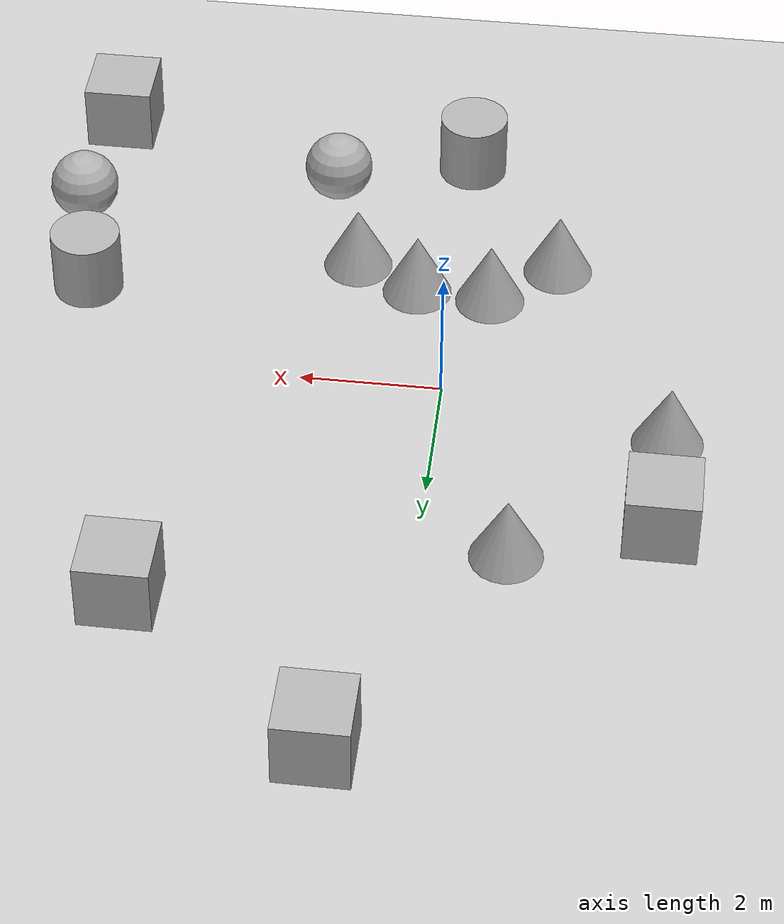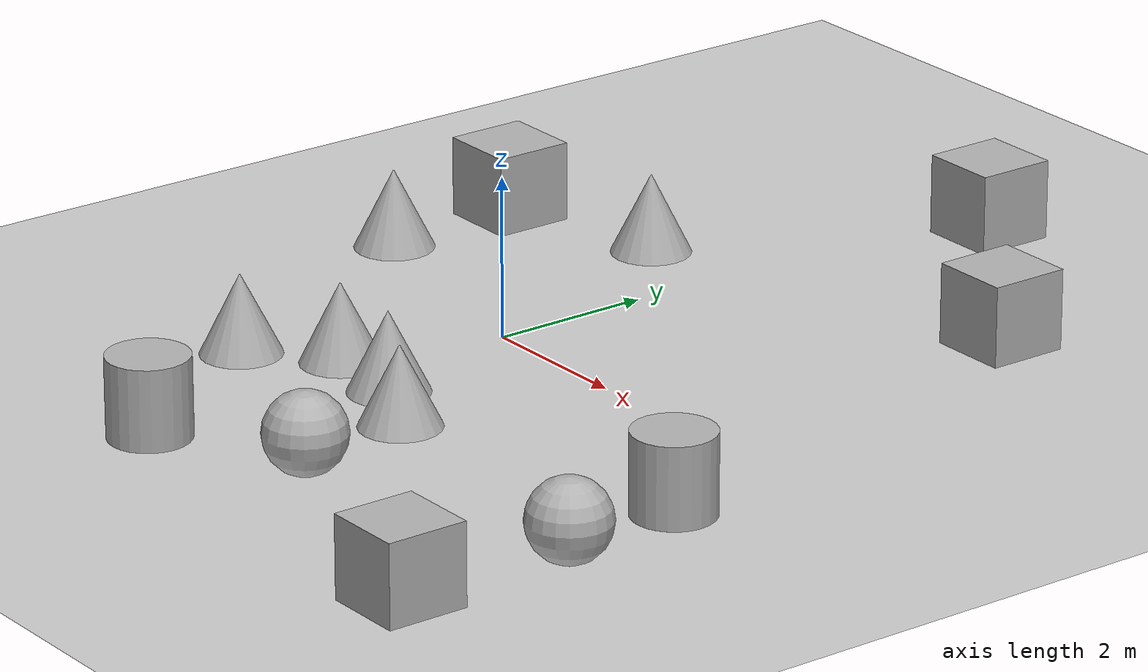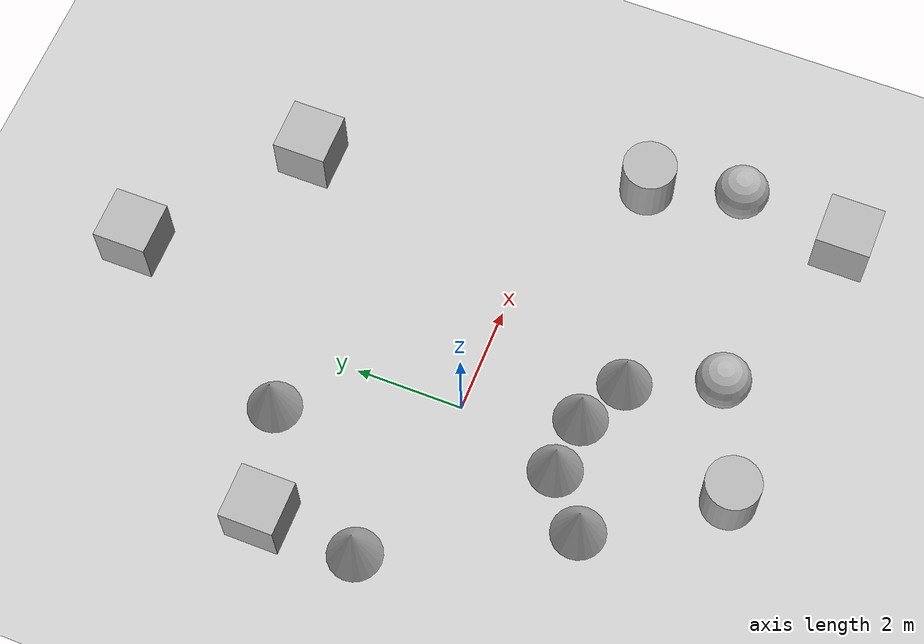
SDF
<sdf version='1.10'>
  <world name='default'>
    <physics name='physics' type='ode'>
      <max_step_size>0.001</max_step_size>
      <real_time_factor>1</real_time_factor>
      <real_time_update_rate>1000</real_time_update_rate>
    </physics>
    <plugin name='gz::sim::systems::Physics' filename='gz-sim-physics-system'/>
    <plugin name='gz::sim::systems::UserCommands' filename='gz-sim-user-commands-system'/>
    <plugin name='gz::sim::systems::SceneBroadcaster' filename='gz-sim-scene-broadcaster-system'/>
    <plugin name='gz::sim::systems::Sensors' filename='gz-sim-sensors-system'>
      <render_engine>ogre2</render_engine>
    </plugin>
    <plugin name='gz::sim::systems::Contact' filename='gz-sim-contact-system'/>
    <gravity>0 0 -9.8000000000000007</gravity>
    <magnetic_field>5.5644999999999998e-06 2.2875799999999999e-05 -4.2388400000000002e-05</magnetic_field>
    <atmosphere type='adiabatic'/>
    <scene>
      <ambient>0.400000006 0.400000006 0.400000006 1</ambient>
      <background>0.699999988 0.699999988 0.699999988 1</background>
      <shadows>true</shadows>
    </scene>
    <model name='ground_plane'>
      <static>true</static>
      <link name='link'>
        <collision name='collision'>
          <geometry>
            <plane>
              <normal>0 0 1</normal>
              <size>100 100</size>
            </plane>
          </geometry>
          <surface>
            <friction>
              <ode/>
            </friction>
            <bounce/>
            <contact/>
          </surface>
        </collision>
        <visual name='visual'>
          <geometry>
            <plane>
              <normal>0 0 1</normal>
              <size>100 100</size>
            </plane>
          </geometry>
          <material>
            <ambient>0.800000012 0.800000012 0.800000012 1</ambient>
            <diffuse>0.800000012 0.800000012 0.800000012 1</diffuse>
            <specular>0.800000012 0.800000012 0.800000012 1</specular>
          </material>
        </visual>
        <pose>0 0 0 0 0 0</pose>
        <inertial>
          <pose>0 0 0 0 0 0</pose>
          <mass>1</mass>
          <inertia>
            <ixx>1</ixx>
            <ixy>0</ixy>
            <ixz>0</ixz>
            <iyy>1</iyy>
            <iyz>0</iyz>
            <izz>1</izz>
          </inertia>
        </inertial>
        <enable_wind>false</enable_wind>
      </link>
      <pose>0 0 0 0 0 0</pose>
      <self_collide>false</self_collide>
    </model>
    <model name='box'>
      <pose>3.7128400802612305 4.4858298301696777 0.49813395644462022 2.6191741994421979e-18 -1.9292581018109869e-18 1.942576668301549e-19</pose>
      <link name='box_link'>
        <inertial>
          <inertia>
            <ixx>0.16666</ixx>
            <ixy>0</ixy>
            <ixz>0</ixz>
            <iyy>0.16666</iyy>
            <iyz>0</iyz>
            <izz>0.16666</izz>
          </inertia>
          <mass>1</mass>
          <pose>0 0 0 0 0 0</pose>
        </inertial>
        <collision name='box_collision'>
          <geometry>
            <box>
              <size>1 1 1</size>
            </box>
          </geometry>
          <surface>
            <friction>
              <ode/>
            </friction>
            <bounce/>
            <contact/>
          </surface>
        </collision>
        <visual name='box_visual'>
          <geometry>
            <box>
              <size>1 1 1</size>
            </box>
          </geometry>
          <material>
            <ambient>0.300000012 0.300000012 0.300000012 1</ambient>
            <diffuse>0.699999988 0.699999988 0.699999988 1</diffuse>
            <specular>1 1 1 1</specular>
          </material>
        </visual>
        <pose>0 0 0 0 0 0</pose>
        <enable_wind>false</enable_wind>
      </link>
      <static>false</static>
      <self_collide>false</self_collide>
    </model>
    <model name='sphere'>
      <pose>1.9833108214418864 -4.169061290152797 0.499999999902001 0 0 0</pose>
      <link name='sphere_link'>
        <inertial>
          <inertia>
            <ixx>0.10000000000000001</ixx>
            <ixy>0</ixy>
            <ixz>0</ixz>
            <iyy>0.10000000000000001</iyy>
            <iyz>0</iyz>
            <izz>0.10000000000000001</izz>
          </inertia>
          <mass>1</mass>
          <pose>0 0 0 0 0 0</pose>
        </inertial>
        <collision name='sphere_collision'>
          <geometry>
            <sphere>
              <radius>0.5</radius>
            </sphere>
          </geometry>
          <surface>
            <friction>
              <ode/>
            </friction>
            <bounce/>
            <contact/>
          </surface>
        </collision>
        <visual name='sphere_visual'>
          <geometry>
            <sphere>
              <radius>0.5</radius>
            </sphere>
          </geometry>
          <material>
            <ambient>0.300000012 0.300000012 0.300000012 1</ambient>
            <diffuse>0.699999988 0.699999988 0.699999988 1</diffuse>
            <specular>1 1 1 1</specular>
          </material>
        </visual>
        <pose>0 0 0 0 0 0</pose>
        <enable_wind>false</enable_wind>
      </link>
      <static>false</static>
      <self_collide>false</self_collide>
    </model>
    <model name='cone'>
      <pose>-1.1812697043365685 3.1018221825038785 0.49999999993296756 5.2541471503228405e-17 -7.7132841033694056e-10 -2.8937183272912105e-22</pose>
      <link name='cone_link'>
        <inertial>
          <inertia>
            <ixx>0.074999999999999997</ixx>
            <ixy>0</ixy>
            <ixz>0</ixz>
            <iyy>0.074999999999999997</iyy>
            <iyz>0</iyz>
            <izz>0.074999999999999997</izz>
          </inertia>
          <mass>1</mass>
          <pose>0 0 0 0 0 0</pose>
        </inertial>
        <collision name='cone_collision'>
          <geometry>
            <cone>
              <radius>0.5</radius>
              <length>1</length>
            </cone>
          </geometry>
          <surface>
            <friction>
              <ode/>
            </friction>
            <bounce/>
            <contact/>
          </surface>
        </collision>
        <visual name='cone_visual'>
          <geometry>
            <cone>
              <radius>0.5</radius>
              <length>1</length>
            </cone>
          </geometry>
          <material>
            <ambient>0.300000012 0.300000012 0.300000012 1</ambient>
            <diffuse>0.699999988 0.699999988 0.699999988 1</diffuse>
            <specular>1 1 1 1</specular>
          </material>
        </visual>
        <pose>0 0 0 0 0 0</pose>
        <enable_wind>false</enable_wind>
      </link>
      <static>false</static>
      <self_collide>false</self_collide>
    </model>
    <model name='cone_0'>
      <pose>-3.1911528114360741 0.70751398801803589 0.49999999993296756 5.254931119316858e-17 -7.7132841033999823e-10 6.969765996526587e-23</pose>
      <link name='cone_link'>
        <inertial>
          <inertia>
            <ixx>0.074999999999999997</ixx>
            <ixy>0</ixy>
            <ixz>0</ixz>
            <iyy>0.074999999999999997</iyy>
            <iyz>0</iyz>
            <izz>0.074999999999999997</izz>
          </inertia>
          <mass>1</mass>
          <pose>0 0 0 0 0 0</pose>
        </inertial>
        <collision name='cone_collision'>
          <geometry>
            <cone>
              <radius>0.5</radius>
              <length>1</length>
            </cone>
          </geometry>
          <surface>
            <friction>
              <ode/>
            </friction>
            <bounce/>
            <contact/>
          </surface>
        </collision>
        <visual name='cone_visual'>
          <geometry>
            <cone>
              <radius>0.5</radius>
              <length>1</length>
            </cone>
          </geometry>
          <material>
            <ambient>0.300000012 0.300000012 0.300000012 1</ambient>
            <diffuse>0.699999988 0.699999988 0.699999988 1</diffuse>
            <specular>1 1 1 1</specular>
          </material>
        </visual>
        <pose>0 0 0 0 0 0</pose>
        <enable_wind>false</enable_wind>
      </link>
      <static>false</static>
      <self_collide>false</self_collide>
    </model>
    <model name='cone_1'>
      <pose>1.4861614700275489 -2.5288798809051514 0.49999999993296756 5.2539854609083048e-17 -7.7132841035189081e-10 -3.1065481876625399e-22</pose>
      <link name='cone_link'>
        <inertial>
          <inertia>
            <ixx>0.074999999999999997</ixx>
            <ixy>0</ixy>
            <ixz>0</ixz>
            <iyy>0.074999999999999997</iyy>
            <iyz>0</iyz>
            <izz>0.074999999999999997</izz>
          </inertia>
          <mass>1</mass>
          <pose>0 0 0 0 0 0</pose>
        </inertial>
        <collision name='cone_collision'>
          <geometry>
            <cone>
              <radius>0.5</radius>
              <length>1</length>
            </cone>
          </geometry>
          <surface>
            <friction>
              <ode/>
            </friction>
            <bounce/>
            <contact/>
          </surface>
        </collision>
        <visual name='cone_visual'>
          <geometry>
            <cone>
              <radius>0.5</radius>
              <length>1</length>
            </cone>
          </geometry>
          <material>
            <ambient>0.300000012 0.300000012 0.300000012 1</ambient>
            <diffuse>0.699999988 0.699999988 0.699999988 1</diffuse>
            <specular>1 1 1 1</specular>
          </material>
        </visual>
        <pose>0 0 0 0 0 0</pose>
        <enable_wind>false</enable_wind>
      </link>
      <static>false</static>
      <self_collide>false</self_collide>
    </model>
    <model name='sphere_0'>
      <pose>5.6850349267289246 -3.2848894266700892 0.499999999902001 0 0 0</pose>
      <link name='sphere_link'>
        <inertial>
          <inertia>
            <ixx>0.10000000000000001</ixx>
            <ixy>0</ixy>
            <ixz>0</ixz>
            <iyy>0.10000000000000001</iyy>
            <iyz>0</iyz>
            <izz>0.10000000000000001</izz>
          </inertia>
          <mass>1</mass>
          <pose>0 0 0 0 0 0</pose>
        </inertial>
        <collision name='sphere_collision'>
          <geometry>
            <sphere>
              <radius>0.5</radius>
            </sphere>
          </geometry>
          <surface>
            <friction>
              <ode/>
            </friction>
            <bounce/>
            <contact/>
          </surface>
        </collision>
        <visual name='sphere_visual'>
          <geometry>
            <sphere>
              <radius>0.5</radius>
            </sphere>
          </geometry>
          <material>
            <ambient>0.300000012 0.300000012 0.300000012 1</ambient>
            <diffuse>0.699999988 0.699999988 0.699999988 1</diffuse>
            <specular>1 1 1 1</specular>
          </material>
        </visual>
        <pose>0 0 0 0 0 0</pose>
        <enable_wind>false</enable_wind>
      </link>
      <static>false</static>
      <self_collide>false</self_collide>
    </model>
    <model name='cylinder'>
      <pose>5.3226799964904785 -1.5849037170410156 0.49999898672103882 -2.5895499767909143e-20 2.1935599413745121e-19 -1.8439600687911591e-20</pose>
      <link name='cylinder_link'>
        <inertial>
          <inertia>
            <ixx>0.14580000000000001</ixx>
            <ixy>0</ixy>
            <ixz>0</ixz>
            <iyy>0.14580000000000001</iyy>
            <iyz>0</iyz>
            <izz>0.125</izz>
          </inertia>
          <mass>1</mass>
          <pose>0 0 0 0 0 0</pose>
        </inertial>
        <collision name='cylinder_collision'>
          <geometry>
            <cylinder>
              <radius>0.5</radius>
              <length>1</length>
            </cylinder>
          </geometry>
          <surface>
            <friction>
              <ode/>
            </friction>
            <bounce/>
            <contact/>
          </surface>
        </collision>
        <visual name='cylinder_visual'>
          <geometry>
            <cylinder>
              <radius>0.5</radius>
              <length>1</length>
            </cylinder>
          </geometry>
          <material>
            <ambient>0.300000012 0.300000012 0.300000012 1</ambient>
            <diffuse>0.699999988 0.699999988 0.699999988 1</diffuse>
            <specular>1 1 1 1</specular>
          </material>
        </visual>
        <pose>0 0 0 0 0 0</pose>
        <enable_wind>false</enable_wind>
      </link>
      <static>false</static>
      <self_collide>false</self_collide>
    </model>
    <model name='cylinder_0'>
      <pose>0.030599454982174201 -4.9576251778944673 0.49999942638036005 -3.1476100535949684e-19 3.1338790349433017e-19 1.682829558949006e-20</pose>
      <link name='cylinder_link'>
        <inertial>
          <inertia>
            <ixx>0.14580000000000001</ixx>
            <ixy>0</ixy>
            <ixz>0</ixz>
            <iyy>0.14580000000000001</iyy>
            <iyz>0</iyz>
            <izz>0.125</izz>
          </inertia>
          <mass>1</mass>
          <pose>0 0 0 0 0 0</pose>
        </inertial>
        <collision name='cylinder_collision'>
          <geometry>
            <cylinder>
              <radius>0.5</radius>
              <length>1</length>
            </cylinder>
          </geometry>
          <surface>
            <friction>
              <ode/>
            </friction>
            <bounce/>
            <contact/>
          </surface>
        </collision>
        <visual name='cylinder_visual'>
          <geometry>
            <cylinder>
              <radius>0.5</radius>
              <length>1</length>
            </cylinder>
          </geometry>
          <material>
            <ambient>0.300000012 0.300000012 0.300000012 1</ambient>
            <diffuse>0.699999988 0.699999988 0.699999988 1</diffuse>
            <specular>1 1 1 1</specular>
          </material>
        </visual>
        <pose>0 0 0 0 0 0</pose>
        <enable_wind>false</enable_wind>
      </link>
      <static>false</static>
      <self_collide>false</self_collide>
    </model>
    <model name='cone_2'>
      <pose>-1.4296900033950806 -2.7298099994659424 0.5 5.2549298699113672e-17 -7.7132800146983982e-10 6.9697701641512196e-23</pose>
      <link name='cone_link'>
        <inertial>
          <inertia>
            <ixx>0.074999999999999997</ixx>
            <ixy>0</ixy>
            <ixz>0</ixz>
            <iyy>0.074999999999999997</iyy>
            <iyz>0</iyz>
            <izz>0.074999999999999997</izz>
          </inertia>
          <mass>1</mass>
          <pose>0 0 0 0 0 0</pose>
        </inertial>
        <collision name='cone_collision'>
          <geometry>
            <cone>
              <radius>0.5</radius>
              <length>1</length>
            </cone>
          </geometry>
          <surface>
            <friction>
              <ode/>
            </friction>
            <bounce/>
            <contact/>
          </surface>
        </collision>
        <visual name='cone_visual'>
          <geometry>
            <cone>
              <radius>0.5</radius>
              <length>1</length>
            </cone>
          </geometry>
          <material>
            <ambient>0.300000012 0.300000012 0.300000012 1</ambient>
            <diffuse>0.699999988 0.699999988 0.699999988 1</diffuse>
            <specular>1 1 1 1</specular>
          </material>
        </visual>
        <pose>0 0 0 0 0 0</pose>
        <enable_wind>false</enable_wind>
      </link>
      <static>false</static>
      <self_collide>false</self_collide>
    </model>
    <model name='cone_3'>
      <pose>-0.50236517542445958 -1.9579732325969872 0.49999999993296756 5.2552930656552052e-17 -7.7132841036180664e-10 -8.8992814193857775e-23</pose>
      <link name='cone_link'>
        <inertial>
          <inertia>
            <ixx>0.074999999999999997</ixx>
            <ixy>0</ixy>
            <ixz>0</ixz>
            <iyy>0.074999999999999997</iyy>
            <iyz>0</iyz>
            <izz>0.074999999999999997</izz>
          </inertia>
          <mass>1</mass>
          <pose>0 0 0 0 0 0</pose>
        </inertial>
        <collision name='cone_collision'>
          <geometry>
            <cone>
              <radius>0.5</radius>
              <length>1</length>
            </cone>
          </geometry>
          <surface>
            <friction>
              <ode/>
            </friction>
            <bounce/>
            <contact/>
          </surface>
        </collision>
        <visual name='cone_visual'>
          <geometry>
            <cone>
              <radius>0.5</radius>
              <length>1</length>
            </cone>
          </geometry>
          <material>
            <ambient>0.300000012 0.300000012 0.300000012 1</ambient>
            <diffuse>0.699999988 0.699999988 0.699999988 1</diffuse>
            <specular>1 1 1 1</specular>
          </material>
        </visual>
        <pose>0 0 0 0 0 0</pose>
        <enable_wind>false</enable_wind>
      </link>
      <static>false</static>
      <self_collide>false</self_collide>
    </model>
    <model name='box_0'>
      <pose>-3.1791604760374783 2.4444181631791495 0.49999999990199806 6.2287739151293738e-22 9.3279666454713669e-22 -3.6315533669320137e-22</pose>
      <link name='box_link'>
        <inertial>
          <inertia>
            <ixx>0.16666</ixx>
            <ixy>0</ixy>
            <ixz>0</ixz>
            <iyy>0.16666</iyy>
            <iyz>0</iyz>
            <izz>0.16666</izz>
          </inertia>
          <mass>1</mass>
          <pose>0 0 0 0 0 0</pose>
        </inertial>
        <collision name='box_collision'>
          <geometry>
            <box>
              <size>1 1 1</size>
            </box>
          </geometry>
          <surface>
            <friction>
              <ode/>
            </friction>
            <bounce/>
            <contact/>
          </surface>
        </collision>
        <visual name='box_visual'>
          <geometry>
            <box>
              <size>1 1 1</size>
            </box>
          </geometry>
          <material>
            <ambient>0.300000012 0.300000012 0.300000012 1</ambient>
            <diffuse>0.699999988 0.699999988 0.699999988 1</diffuse>
            <specular>1 1 1 1</specular>
          </material>
        </visual>
        <pose>0 0 0 0 0 0</pose>
        <enable_wind>false</enable_wind>
      </link>
      <static>false</static>
      <self_collide>false</self_collide>
    </model>
    <model name='box_1'>
      <pose>0.8500210173485554 6.7420381249530132 0.49999999990199806 6.2287739151293738e-22 9.3279666454713669e-22 -3.6315533669320137e-22</pose>
      <link name='box_link'>
        <inertial>
          <inertia>
            <ixx>0.16666</ixx>
            <ixy>0</ixy>
            <ixz>0</ixz>
            <iyy>0.16666</iyy>
            <iyz>0</iyz>
            <izz>0.16666</izz>
          </inertia>
          <mass>1</mass>
          <pose>0 0 0 0 0 0</pose>
        </inertial>
        <collision name='box_collision'>
          <geometry>
            <box>
              <size>1 1 1</size>
            </box>
          </geometry>
          <surface>
            <friction>
              <ode/>
            </friction>
            <bounce/>
            <contact/>
          </surface>
        </collision>
        <visual name='box_visual'>
          <geometry>
            <box>
              <size>1 1 1</size>
            </box>
          </geometry>
          <material>
            <ambient>0.300000012 0.300000012 0.300000012 1</ambient>
            <diffuse>0.699999988 0.699999988 0.699999988 1</diffuse>
            <specular>1 1 1 1</specular>
          </material>
        </visual>
        <pose>0 0 0 0 0 0</pose>
        <enable_wind>false</enable_wind>
      </link>
      <static>false</static>
      <self_collide>false</self_collide>
    </model>
    <model name='cone_4'>
      <pose>0.56445813034796899 -2.0359750591179688 0.5 0 0 0</pose>
      <link name='cone_link'>
        <inertial>
          <inertia>
            <ixx>0.074999999999999997</ixx>
            <ixy>0</ixy>
            <ixz>0</ixz>
            <iyy>0.074999999999999997</iyy>
            <iyz>0</iyz>
            <izz>0.074999999999999997</izz>
          </inertia>
          <mass>1</mass>
          <pose>0 0 0 0 0 0</pose>
        </inertial>
        <collision name='cone_collision'>
          <geometry>
            <cone>
              <radius>0.5</radius>
              <length>1</length>
            </cone>
          </geometry>
          <surface>
            <friction>
              <ode/>
            </friction>
            <bounce/>
            <contact/>
          </surface>
        </collision>
        <visual name='cone_visual'>
          <geometry>
            <cone>
              <radius>0.5</radius>
              <length>1</length>
            </cone>
          </geometry>
          <material>
            <ambient>0.300000012 0.300000012 0.300000012 1</ambient>
            <diffuse>0.699999988 0.699999988 0.699999988 1</diffuse>
            <specular>1 1 1 1</specular>
          </material>
        </visual>
        <pose>0 0 0 0 0 0</pose>
        <enable_wind>false</enable_wind>
      </link>
      <static>false</static>
      <self_collide>false</self_collide>
    </model>
    <model name='box_2'>
      <pose>5.466543884898476 -5.3499031052485355 0.5 0 0 0</pose>
      <link name='box_link'>
        <inertial>
          <inertia>
            <ixx>0.16666</ixx>
            <ixy>0</ixy>
            <ixz>0</ixz>
            <iyy>0.16666</iyy>
            <iyz>0</iyz>
            <izz>0.16666</izz>
          </inertia>
          <mass>1</mass>
          <pose>0 0 0 0 0 0</pose>
        </inertial>
        <collision name='box_collision'>
          <geometry>
            <box>
              <size>1 1 1</size>
            </box>
          </geometry>
          <surface>
            <friction>
              <ode/>
            </friction>
            <bounce/>
            <contact/>
          </surface>
        </collision>
        <visual name='box_visual'>
          <geometry>
            <box>
              <size>1 1 1</size>
            </box>
          </geometry>
          <material>
            <ambient>0.300000012 0.300000012 0.300000012 1</ambient>
            <diffuse>0.699999988 0.699999988 0.699999988 1</diffuse>
            <specular>1 1 1 1</specular>
          </material>
        </visual>
        <pose>0 0 0 0 0 0</pose>
        <enable_wind>false</enable_wind>
      </link>
      <static>false</static>
      <self_collide>false</self_collide>
    </model>
    <light name='sun' type='directional'>
      <pose>0 0 10 0 0 0</pose>
      <cast_shadows>true</cast_shadows>
      <intensity>1</intensity>
      <direction>-0.5 0.10000000000000001 -0.90000000000000002</direction>
      <diffuse>0.800000012 0.800000012 0.800000012 1</diffuse>
      <specular>0.200000003 0.200000003 0.200000003 1</specular>
      <attenuation>
        <range>1000</range>
        <linear>0.0099999997764825821</linear>
        <constant>0.89999997615814209</constant>
        <quadratic>0.0010000000474974513</quadratic>
      </attenuation>
      <spot>
        <inner_angle>0</inner_angle>
        <outer_angle>0</outer_angle>
        <falloff>0</falloff>
      </spot>
    </light>
  </world>
</sdf>
